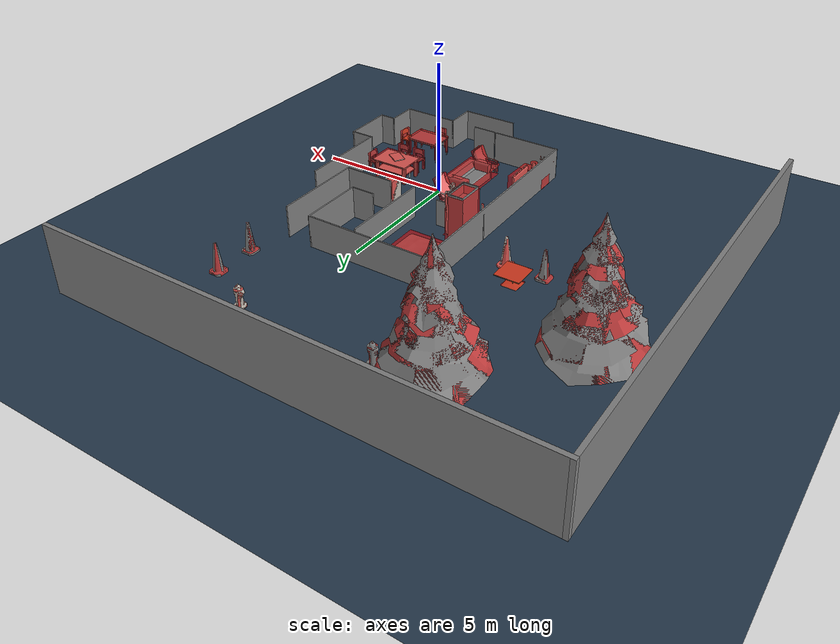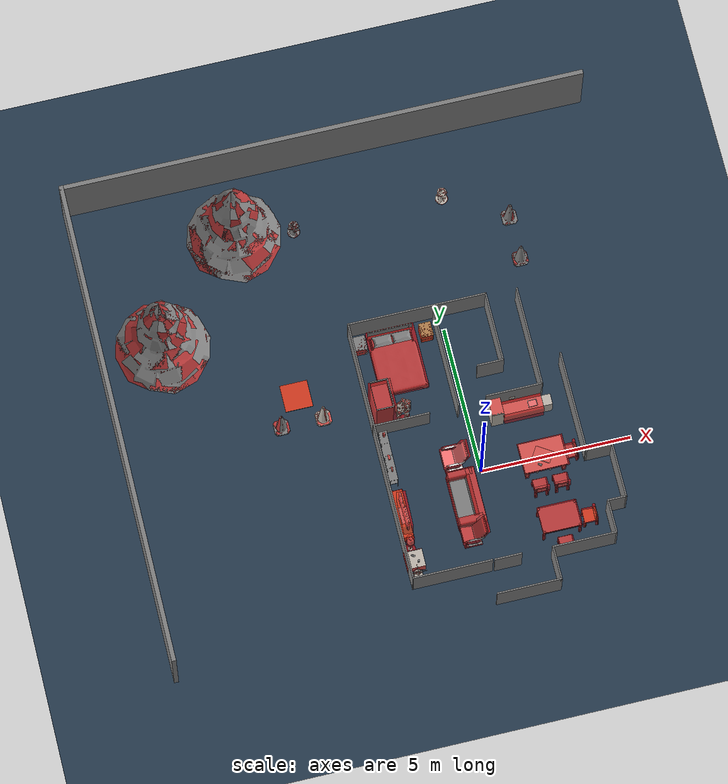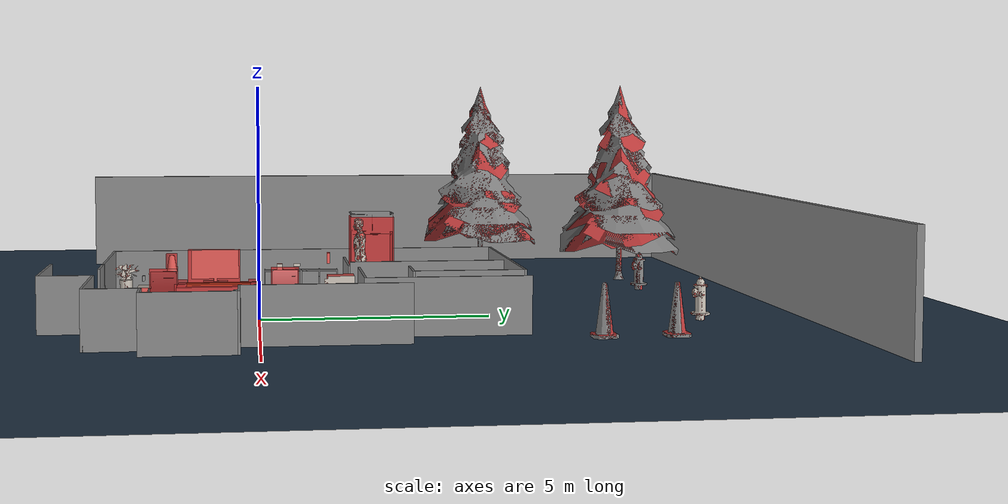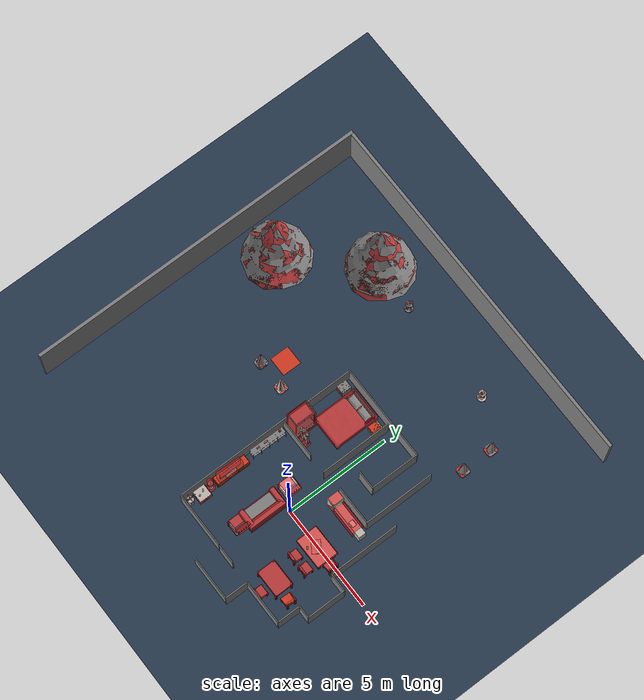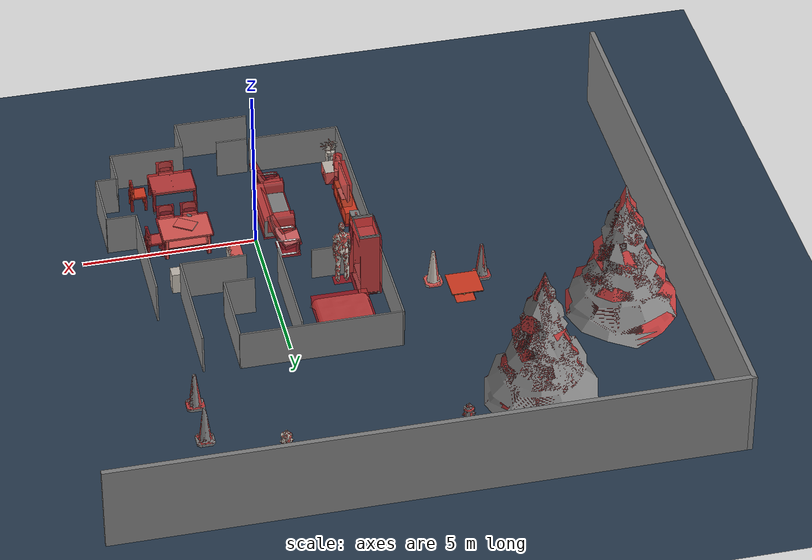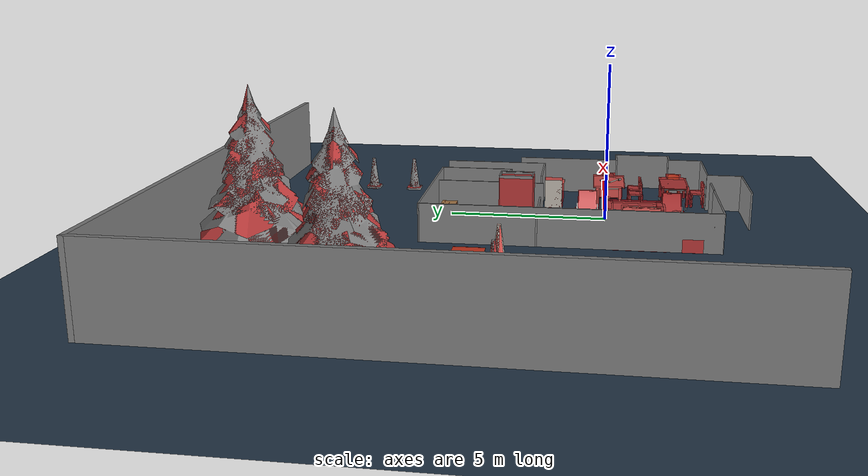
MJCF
<?xml version="1.0" ?>
<mujoco model="isr_testbed">
	<compiler meshdir="../../meshes/" texturedir="../../meshes/textures" angle="radian" autolimits="true" balanceinertia="true" boundmass="0.000001" boundinertia="0.000001"/>
	<default>
		<default class="visual">
			<geom contype="0" conaffinity="0"/>
		</default>
		<default class="collision">
			<geom rgba="1.0 0.0 0.0 0.5"/>
		</default>
	</default>
	<asset>
		<mesh name="construction_cone_collision10d010d010d0" file="stl/construction_cone10d010d010d0.stl"/>
		<texture name="construction_cone_visual10d010d010d0" type="2d" file="Construction_Cone_Diffuse.png"/>
		<material name="construction_cone_visual10d010d010d0" texture="construction_cone_visual10d010d010d0"/>
		<mesh name="construction_cone_visual10d010d010d0" file="obj/construction_cone10d010d010d0.obj"/>
		<mesh name="fire_hydrant_collision" file="stl/fire_hydrant.stl"/>
		<texture name="fire_hydrant_visual" type="2d" file="fire_hydrant_diffuse.png"/>
		<material name="fire_hydrant_visual" texture="fire_hydrant_visual"/>
		<mesh name="fire_hydrant_visual" file="obj/fire_hydrant.obj"/>
		<mesh name="pine_tree_visual" file="obj/pine_tree.obj"/>
		<mesh name="pine_tree_collision" file="stl/pine_tree.stl"/>
		<texture name="standing_visual" type="2d" file="eyebrow001.png"/>
		<material name="standing_visual" texture="standing_visual"/>
		<mesh name="standing_visual" file="obj/standing.obj"/>
		<mesh name="standing_collision" file="stl/standing.stl"/>
		<texture name="pizza_box_visual" type="2d" file="pizza_box_side.png"/>
		<material name="pizza_box_visual" texture="pizza_box_visual"/>
		<mesh name="pizza_box_visual" file="obj/pizza_box.obj"/>
		<texture name="tea_box_visual" type="2d" file="tea_box_back.png"/>
		<material name="tea_box_visual" texture="tea_box_visual"/>
		<mesh name="tea_box_visual" file="obj/tea_box.obj"/>
		<mesh name="plastic_cup_collision" file="stl/plastic_cup.stl"/>
		<mesh name="plastic_cup_visual" file="obj/plastic_cup.obj"/>
		<mesh name="shelf_visual0d150d20d2" file="stl/shelf0d150d20d2.stl"/>
		<mesh name="shelf_collision0d150d20d2" file="stl/shelf0d150d20d2.stl"/>
		<texture name="plant_floor_small_visual" type="2d" file="large_plant_small.png"/>
		<material name="plant_floor_small_visual" texture="plant_floor_small_visual"/>
		<mesh name="plant_floor_small_visual" file="obj/plant_floor_small.obj"/>
		<mesh name="plant_floor_small_collision" file="stl/plant_floor_small.stl"/>
		<texture name="table_bedside_visual1d71d70d9" type="2d" file="CIMG0283.png"/>
		<material name="table_bedside_visual1d71d70d9" texture="table_bedside_visual1d71d70d9"/>
		<mesh name="table_bedside_visual1d71d70d9" file="obj/table_bedside1d71d70d9.obj"/>
		<texture name="bedroom_nightstand_visual" type="2d" file="wood_cherry_texture.png"/>
		<material name="bedroom_nightstand_visual" texture="bedroom_nightstand_visual"/>
		<mesh name="bedroom_nightstand_visual" file="obj/bedroom_nightstand.obj"/>
		<mesh name="bedroom_nightstand_collision" file="stl/bedroom_nightstand.stl"/>
		<mesh name="dinning_room_table_visual" file="obj/dinning_room_table.obj"/>
		<mesh name="cabinet_diamondback_collision1d81d01d0" file="stl/cabinet_diamondback1d81d01d0.stl"/>
		<texture name="cabinet_diamondback_visual1d81d01d0" type="2d" file="cabinet_diamondback.png"/>
		<material name="cabinet_diamondback_visual1d81d01d0" texture="cabinet_diamondback_visual1d81d01d0"/>
		<mesh name="cabinet_diamondback_visual1d81d01d0" file="obj/cabinet_diamondback1d81d01d0.obj"/>
		<texture name="tray_blue_white_visual0d60d60d8" type="2d" file="blue_white_tray_top.png"/>
		<material name="tray_blue_white_visual0d60d60d8" texture="tray_blue_white_visual0d60d60d8"/>
		<mesh name="tray_blue_white_visual0d60d60d8" file="obj/tray_blue_white0d60d60d8.obj"/>
		<texture name="simple_chair_visual" type="2d" file="wood_bamboo_texture.png"/>
		<material name="simple_chair_visual" texture="simple_chair_visual"/>
		<mesh name="simple_chair_visual" file="obj/simple_chair.obj"/>
		<mesh name="sofa_visual" file="obj/sofa.obj"/>
		<texture name="tv_chair_visual" type="2d" file="white_cloth_texture.png"/>
		<material name="tv_chair_visual" texture="tv_chair_visual"/>
		<mesh name="tv_chair_visual" file="obj/tv_chair.obj"/>
		<texture name="tv_table_visual" type="2d" file="dark_wood_texture.png"/>
		<material name="tv_table_visual" texture="tv_table_visual"/>
		<mesh name="tv_table_visual" file="obj/tv_table.obj"/>
		<texture name="cafe_table_visual1d01d00d6" type="2d" file="Wood_Floor_Dark.png"/>
		<material name="cafe_table_visual1d01d00d6" texture="cafe_table_visual1d01d00d6"/>
		<mesh name="cafe_table_visual1d01d00d6" file="obj/cafe_table1d01d00d6.obj"/>
		<texture name="basmati_rice_visual1d51d01d0" type="2d" file="basmati_rice.png"/>
		<material name="basmati_rice_visual1d51d01d0" texture="basmati_rice_visual1d51d01d0"/>
		<mesh name="basmati_rice_visual1d51d01d0" file="obj/basmati_rice1d51d01d0.obj"/>
		<texture name="apple_juice_box_visual" type="2d" file="apple_juice_bottom.png"/>
		<material name="apple_juice_box_visual" texture="apple_juice_box_visual"/>
		<mesh name="apple_juice_box_visual" file="obj/apple_juice_box.obj"/>
		<texture name="cabinet_ikea_galant_visual1d20d80d8" type="2d" file="cabinet_ikea_galant.png"/>
		<material name="cabinet_ikea_galant_visual1d20d80d8" texture="cabinet_ikea_galant_visual1d20d80d8"/>
		<mesh name="cabinet_ikea_galant_visual1d20d80d8" file="obj/cabinet_ikea_galant1d20d80d8.obj"/>
		<texture name="aruco_marker_0_visual0d10d10d1" type="2d" file="aruco_mark_0.png"/>
		<material name="aruco_marker_0_visual0d10d10d1" texture="aruco_marker_0_visual0d10d10d1"/>
		<mesh name="aruco_marker_0_visual0d10d10d1" file="obj/aruco_marker_00d10d10d1.obj"/>
		<mesh name="aruco_marker_0_collision0d10d10d1" file="stl/aruco_marker_00d10d10d1.stl"/>
		<mesh name="SM_wardrobe__wardrobe__base_link_visual_0_visual" file="stl/SM_wardrobe__wardrobe__base_link_visual_0.stl"/>
		<texture name="lamp_ikea_arstid_visual1d01d02d0" type="2d" file="IMG_2634.png"/>
		<material name="lamp_ikea_arstid_visual1d01d02d0" texture="lamp_ikea_arstid_visual1d01d02d0"/>
		<mesh name="lamp_ikea_arstid_visual1d01d02d0" file="obj/lamp_ikea_arstid1d01d02d0.obj"/>
		<texture name="table_living_room_visual1d51d21d4" type="2d" file="table_living_room.png"/>
		<material name="table_living_room_visual1d51d21d4" texture="table_living_room_visual1d51d21d4"/>
		<mesh name="table_living_room_visual1d51d21d4" file="obj/table_living_room1d51d21d4.obj"/>
		<texture name="tv_visual" type="2d" file="tv_texture.png"/>
		<material name="tv_visual" texture="tv_visual"/>
		<mesh name="tv_visual" file="obj/tv.obj"/>
		<mesh name="bed_visual" file="stl/bed.stl"/>
	</asset>
	<asset>
		<texture type="2d" name="texplane" builtin="checker" mark="cross" rgb1="0.2 0.3 0.4" rgb2="0.1 0.15 0.2" markrgb="0.8 0.8 0.8" width="512" height="512"/>
		<material name="matplane" texture="texplane" texuniform="true" reflectance="0.3"/>
	</asset>
	<worldbody>
		<geom name="ground" size="0 0 1" type="plane" condim="1" material="matplane"/>
		<light pos="0 0 4" dir="0 0 -1" directional="true" diffuse="0.6 0.6 0.6" specular="0.2 0.2 0.2"/>
	</worldbody>
	<worldbody>
		<body name="isr_testbed" pos="0.0 0.0 0.0" quat="1.0 0.0 0.0 0.0">
			<body name="wall" pos="-1.19 1.86 0.0" quat="1.0 0.0 0.0 0.0">
				<body name="wall__wall__Wall_2" pos="0.0 0.0 0.0" quat="1.0 0.0 0.0 0.0">
					<geom name="wall__wall__Wall_2_collision_0" pos="-1.26581 9.97568 1.25" quat="0.9999999699875002 0.0 0.0 -0.00024499999754897916" class="collision" type="box" size="8.7892 0.07500000000000001 1.25"/>
					<geom name="wall__wall__Wall_2_visual_0" pos="-1.26581 9.97568 1.25" quat="0.9999999699875002 0.0 0.0 -0.00024499999754897916" class="visual" type="box" size="8.7892 0.07500000000000001 1.25"/>
				</body>
				<body name="wall__wall__Wall_0" pos="0.0 0.0 0.0" quat="1.0 0.0 0.0 0.0">
					<geom name="wall__wall__Wall_0_collision_0" pos="-9.98 1.805 1.25" quat="-0.7071054825112365 0.0 0.0 0.7071080798594735" class="collision" type="box" size="8.25 0.075 1.25"/>
					<geom name="wall__wall__Wall_0_visual_0" pos="-9.98 1.805 1.25" quat="-0.7071054825112365 0.0 0.0 0.7071080798594735" class="visual" type="box" size="8.25 0.075 1.25"/>
				</body>
			</body>
			<body name="cone2__ConstructionCone__link" pos="-4.54 2.97 0.0" quat="1.0 0.0 0.0 0.0">
				<geom name="cone2__ConstructionCone__link_collision_0" pos="0.0 0.0 0.0" quat="1.0 0.0 0.0 0.0" class="collision" type="mesh" mesh="construction_cone_collision10d010d010d0"/>
				<geom name="cone2__ConstructionCone__link_visual_0" pos="0.0 0.0 0.0" quat="1.0 0.0 0.0 0.0" class="visual" type="mesh" material="construction_cone_visual10d010d010d0" mesh="construction_cone_visual10d010d010d0"/>
			</body>
			<body name="cone4__ConstructionCone__link" pos="3.03 8.33 0.0" quat="1.0 0.0 0.0 0.0">
				<geom name="cone4__ConstructionCone__link_visual_0" pos="0.0 0.0 0.0" quat="1.0 0.0 0.0 0.0" class="visual" type="mesh" mesh="construction_cone_visual10d010d010d0"/>
				<geom name="cone4__ConstructionCone__link_collision_0" pos="0.0 0.0 0.0" quat="1.0 0.0 0.0 0.0" class="collision" type="mesh" mesh="construction_cone_collision10d010d010d0"/>
			</body>
			<body name="hydrant1__fire_hydrant__link" pos="1.01 9.45 0.0" quat="1.0 0.0 0.0 0.0">
				<geom name="hydrant1__fire_hydrant__link_collision_0" pos="0.0 0.0 0.0" quat="1.0 0.0 0.0 0.0" class="collision" type="mesh" mesh="fire_hydrant_collision"/>
				<geom name="hydrant1__fire_hydrant__link_visual_0" pos="0.0 0.0 0.0" quat="1.0 0.0 0.0 0.0" class="visual" type="mesh" material="fire_hydrant_visual" mesh="fire_hydrant_visual"/>
			</body>
			<body name="tree1__pine_tree__link" pos="-6.0 9.45 0.0" quat="1.0 0.0 0.0 0.0">
				<geom name="tree1__pine_tree__link_visual_1" pos="0.0 0.0 0.0" quat="1.0 0.0 0.0 0.0" class="visual" type="mesh" mesh="pine_tree_visual"/>
				<geom name="tree1__pine_tree__link_visual_0" pos="0.0 0.0 0.0" quat="1.0 0.0 0.0 0.0" class="visual" type="mesh" mesh="pine_tree_visual"/>
				<geom name="tree1__pine_tree__link_collision_0" pos="0.0 0.0 0.0" quat="1.0 0.0 0.0 0.0" class="collision" type="mesh" mesh="pine_tree_collision"/>
			</body>
			<body name="human__person_standing__link" pos="-2.04 2.41 0.0" quat="1.0 0.0 0.0 0.0">
				<geom name="human__person_standing__link_visual_0" pos="0.0 0.0 0.02" quat="0.9998000066665778 0.01999866669333308 0.0 0.0" class="visual" type="mesh" material="standing_visual" mesh="standing_visual"/>
				<geom name="human__person_standing__link_collision_1" pos="0.0 0.0 0.02" quat="0.9998000066665778 0.01999866669333308 0.0 0.0" class="collision" type="mesh" mesh="standing_collision"/>
				<geom name="human__person_standing__link_collision_0" pos="0.0 -0.1 0.01" quat="1.0 0.0 0.0 0.0" class="collision" type="box" size="0.25 0.175 0.01"/>
			</body>
			<body name="pizza_box__pizza_box__base_link" pos="2.0 -0.15 0.8" quat="0.8775825618903728 0.0 0.0 0.47942553860420295">
				<geom name="pizza_box__pizza_box__base_link_collision_0" pos="0.0 0.0 0.0175" quat="1.0 0.0 0.0 0.0" class="collision" type="box" size="0.205 0.3 0.0175"/>
				<geom name="pizza_box__pizza_box__base_link_visual_0" pos="0.0 0.0 0.0" quat="1.0 0.0 0.0 0.0" class="visual" type="mesh" material="pizza_box_visual" mesh="pizza_box_visual"/>
			</body>
			<body name="tea_box__tea_box__base_link" pos="-2.85 0.9 0.85" quat="1.0 0.0 0.0 0.0">
				<geom name="tea_box__tea_box__base_link_collision_0" pos="0.0 0.0 0.0" quat="1.0 0.0 0.0 0.0" class="collision" type="box" size="0.0315 0.079 0.0365"/>
				<geom name="tea_box__tea_box__base_link_visual_0" pos="0.0 0.0 0.0" quat="1.0 0.0 0.0 0.0" class="visual" type="mesh" material="tea_box_visual" mesh="tea_box_visual"/>
			</body>
			<body name="cup1__plastic_cup__link" pos="-2.85 -2.4 0.45" quat="0.8775825618903728 0.0 0.0 0.47942553860420295">
				<geom name="cup1__plastic_cup__link_collision_0" pos="0.0 0.0 0.065" quat="1.0 0.0 0.0 0.0" class="collision" type="mesh" mesh="plastic_cup_collision"/>
				<geom name="cup1__plastic_cup__link_visual_0" pos="0.0 0.0 0.065" quat="1.0 0.0 0.0 0.0" class="visual" type="mesh" mesh="plastic_cup_visual"/>
			</body>
			<body name="shelf__shelf__base_link" pos="-2.85 1.0 0.0" quat="0.7109135380122774 0.0 0.0 0.7032794192004103">
				<geom name="shelf__shelf__base_link_visual_0" pos="0.0 0.0 0.0" quat="1.0 0.0 0.0 0.0" class="visual" type="mesh" mesh="shelf_visual0d150d20d2"/>
				<geom name="shelf__shelf__base_link_collision_0" pos="0.0 0.0 0.0" quat="1.0 0.0 0.0 0.0" class="collision" type="mesh" mesh="shelf_collision0d150d20d2"/>
			</body>
			<body name="plant_floor_small__plant_floor_small__base_link" pos="-2.84 -3.05 0.0" quat="1.0 0.0 0.0 0.0">
				<geom name="plant_floor_small__plant_floor_small__base_link_visual_0" pos="0.0 0.0 0.0" quat="1.0 0.0 0.0 0.0" class="visual" type="mesh" material="plant_floor_small_visual" mesh="plant_floor_small_visual"/>
				<geom name="plant_floor_small__plant_floor_small__base_link_collision_0" pos="0.0 0.0 0.0" quat="1.0 0.0 0.0 0.0" class="collision" type="mesh" mesh="plant_floor_small_collision"/>
			</body>
			<body name="table_bedside__table_bedside__base_link" pos="-2.82 -2.48 0.0" quat="1.0 0.0 0.0 0.0">
				<geom name="table_bedside__table_bedside__base_link_visual_0" pos="0.0 0.0 0.0" quat="1.0 0.0 0.0 0.0" class="visual" type="mesh" material="table_bedside_visual1d71d70d9" mesh="table_bedside_visual1d71d70d9"/>
				<geom name="table_bedside__table_bedside__base_link_collision_0" pos="0.0 0.0 0.2" quat="1.0 0.0 0.0 0.0" class="collision" type="box" size="0.3 0.3 0.2"/>
			</body>
			<body name="nightstand1__bedroom_nightstand__link_0" pos="-0.69 5.0 0.0" quat="1.0 0.0 0.0 0.0">
				<geom name="nightstand1__bedroom_nightstand__link_0_visual_0" pos="0.0 0.0 0.0" quat="1.0 0.0 0.0 0.0" class="visual" type="mesh" material="bedroom_nightstand_visual" mesh="bedroom_nightstand_visual"/>
				<geom name="nightstand1__bedroom_nightstand__link_0_collision_0" pos="0.0 0.0 0.0" quat="1.0 0.0 0.0 0.0" class="collision" type="mesh" mesh="bedroom_nightstand_collision"/>
			</body>
			<body name="dinning_room_table__dinning_room_table__base_link" pos="2.05802 -2.30976 0.0" quat="1.0 0.0 0.0 0.0">
				<geom name="dinning_room_table__dinning_room_table__base_link_collision_2" pos="0.55 -0.4 0.45" quat="1.0 0.0 0.0 0.0" class="collision" type="cylinder" size="0.05 0.35"/>
				<geom name="dinning_room_table__dinning_room_table__base_link_collision_1" pos="-0.65 -0.4 0.45" quat="1.0 0.0 0.0 0.0" class="collision" type="cylinder" size="0.05 0.35"/>
				<geom name="dinning_room_table__dinning_room_table__base_link_visual_0" pos="-4.8 -1.2 0.0" quat="1.0 0.0 0.0 0.0" class="visual" type="mesh" mesh="dinning_room_table_visual"/>
				<geom name="dinning_room_table__dinning_room_table__base_link_collision_3" pos="0.55 0.4 0.45" quat="1.0 0.0 0.0 0.0" class="collision" type="cylinder" size="0.05 0.35"/>
				<geom name="dinning_room_table__dinning_room_table__base_link_collision_0" pos="-0.04 0.015 0.75" quat="1.0 0.0 0.0 0.0" class="collision" type="box" size="0.65 0.45 0.05"/>
				<geom name="dinning_room_table__dinning_room_table__base_link_collision_4" pos="-0.65 0.4 0.45" quat="1.0 0.0 0.0 0.0" class="collision" type="cylinder" size="0.05 0.35"/>
			</body>
			<body name="cabinet_diamondback__cabinet_diamondback__base_link" pos="0.91 1.69 0.0" quat="0.7086488244966773 0.0 0.0 -0.7055613676637047">
				<geom name="cabinet_diamondback__cabinet_diamondback__base_link_collision_0" pos="0.0 0.0 0.0" quat="1.0 0.0 0.0 0.0" class="collision" type="mesh" mesh="cabinet_diamondback_collision1d81d01d0"/>
				<geom name="cabinet_diamondback__cabinet_diamondback__base_link_visual_0" pos="0.0 0.0 0.0" quat="1.0 0.0 0.0 0.0" class="visual" type="mesh" material="cabinet_diamondback_visual1d81d01d0" mesh="cabinet_diamondback_visual1d81d01d0"/>
			</body>
			<body name="tray_blue_white__tray_blue_white__base_link" pos="2.12 1.67 0.68" quat="0.7179106696109434 0.0 0.0 -0.6961352386273568">
				<geom name="tray_blue_white__tray_blue_white__base_link_visual_0" pos="0.0 0.0 0.0" quat="1.0 0.0 0.0 0.0" class="visual" type="mesh" material="tray_blue_white_visual0d60d60d8" mesh="tray_blue_white_visual0d60d60d8"/>
				<geom name="tray_blue_white__tray_blue_white__base_link_collision_0" pos="0.0 0.0 0.0" quat="1.0 0.0 0.0 0.0" class="collision" type="box" size="0.115 0.15 0.008"/>
			</body>
			<body name="chair_dinning_room_2__simple_chair__link_0" pos="2.96 -2.52 0.0" quat="0.7151343726872378 0.0 0.0 0.6989870020259539">
				<geom name="chair_dinning_room_2__simple_chair__link_0_collision_2" pos="0.33 -0.25 0.2" quat="1.0 0.0 0.0 0.0" class="collision" type="box" size="0.04 0.04 0.25"/>
				<geom name="chair_dinning_room_2__simple_chair__link_0_collision_4" pos="-0.05 -0.25 0.2" quat="1.0 0.0 0.0 0.0" class="collision" type="box" size="0.04 0.04 0.25"/>
				<geom name="chair_dinning_room_2__simple_chair__link_0_collision_5" pos="-0.05 0.15 0.2" quat="1.0 0.0 0.0 0.0" class="collision" type="box" size="0.04 0.04 0.25"/>
				<geom name="chair_dinning_room_2__simple_chair__link_0_collision_1" pos="0.15 -0.22 0.6" quat="1.0 0.0 0.0 0.0" class="collision" type="box" size="0.25 0.0375 0.19"/>
				<geom name="chair_dinning_room_2__simple_chair__link_0_collision_3" pos="0.33 0.15 0.2" quat="1.0 0.0 0.0 0.0" class="collision" type="box" size="0.04 0.04 0.25"/>
				<geom name="chair_dinning_room_2__simple_chair__link_0_collision_0" pos="0.15 -0.05 0.45" quat="1.0 0.0 0.0 0.0" class="collision" type="box" size="0.25 0.225 0.025"/>
				<geom name="chair_dinning_room_2__simple_chair__link_0_visual_0" pos="0.0 0.0 0.0" quat="1.0 0.0 0.0 0.0" class="visual" type="mesh" material="simple_chair_visual" mesh="simple_chair_visual"/>
			</body>
			<body name="chair_kitchen_2__simple_chair__link_0" pos="2.26 -0.97 0.0" quat="1.0 0.0 0.0 0.0">
				<geom name="chair_kitchen_2__simple_chair__link_0_visual_0" pos="0.0 0.0 0.0" quat="1.0 0.0 0.0 0.0" class="visual" type="mesh" mesh="simple_chair_visual"/>
				<geom name="chair_kitchen_2__simple_chair__link_0_collision_0" pos="0.15 -0.05 0.45" quat="1.0 0.0 0.0 0.0" class="collision" type="box" size="0.25 0.225 0.025"/>
				<geom name="chair_kitchen_2__simple_chair__link_0_collision_2" pos="0.33 -0.25 0.2" quat="1.0 0.0 0.0 0.0" class="collision" type="box" size="0.04 0.04 0.25"/>
				<geom name="chair_kitchen_2__simple_chair__link_0_collision_5" pos="-0.05 0.15 0.2" quat="1.0 0.0 0.0 0.0" class="collision" type="box" size="0.04 0.04 0.25"/>
				<geom name="chair_kitchen_2__simple_chair__link_0_collision_1" pos="0.15 -0.22 0.6" quat="1.0 0.0 0.0 0.0" class="collision" type="box" size="0.25 0.0375 0.19"/>
				<geom name="chair_kitchen_2__simple_chair__link_0_collision_3" pos="0.33 0.15 0.2" quat="1.0 0.0 0.0 0.0" class="collision" type="box" size="0.04 0.04 0.25"/>
				<geom name="chair_kitchen_2__simple_chair__link_0_collision_4" pos="-0.05 -0.25 0.2" quat="1.0 0.0 0.0 0.0" class="collision" type="box" size="0.04 0.04 0.25"/>
			</body>
			<body name="sofa__sofa__link_0" pos="-0.76 -0.9 0.0" quat="1.0 0.0 0.0 0.0">
				<geom name="sofa__sofa__link_0_collision_0" pos="0.05 0.0 0.2" quat="1.0 0.0 0.0 0.0" class="collision" type="box" size="0.465 0.915 0.185"/>
				<geom name="sofa__sofa__link_0_collision_2" pos="0.0 -0.8 0.5" quat="1.0 0.0 0.0 0.0" class="collision" type="box" size="0.4 0.125 0.25"/>
				<geom name="sofa__sofa__link_0_collision_1" pos="0.35 0.0 0.5" quat="1.0 0.0 0.0 0.0" class="collision" type="box" size="0.15 0.915 0.25"/>
				<geom name="sofa__sofa__link_0_collision_3" pos="0.0 0.8 0.5" quat="1.0 0.0 0.0 0.0" class="collision" type="box" size="0.4 0.125 0.25"/>
				<geom name="sofa__sofa__link_0_visual_0" pos="0.0 0.0 0.0" quat="1.0 0.0 0.0 0.0" class="visual" type="mesh" mesh="sofa_visual"/>
			</body>
			<body name="chair2__tv_chair__link_0" pos="-0.73 0.57 0.0" quat="0.7073882691671998 0.0 0.0 -0.706825181105366">
				<geom name="chair2__tv_chair__link_0_visual_0" pos="0.0 0.0 0.0" quat="1.0 0.0 0.0 0.0" class="visual" type="mesh" material="tv_chair_visual" mesh="tv_chair_visual"/>
				<geom name="chair2__tv_chair__link_0_collision_1" pos="0.0 -0.1 0.0" quat="1.0 0.0 0.0 0.0" class="collision" type="box" size="0.35 0.3 0.025"/>
				<geom name="chair2__tv_chair__link_0_collision_0" pos="0.0 -0.2 0.35" quat="0.9902159962126371 -0.1395431146442365 0.0 0.0" class="collision" type="box" size="0.35 0.24999999999999997 0.05"/>
				<geom name="chair2__tv_chair__link_0_collision_3" pos="0.33 -0.33 0.3" quat="1.0 0.0 0.0 0.0" class="collision" type="box" size="0.05 0.05 0.225"/>
				<geom name="chair2__tv_chair__link_0_collision_2" pos="0.0 0.18 0.65" quat="0.9800665778412416 -0.19866933079506122 0.0 0.0" class="collision" type="box" size="0.3 0.10000000000000002 0.425"/>
				<geom name="chair2__tv_chair__link_0_collision_4" pos="-0.33 -0.33 0.3" quat="1.0 0.0 0.0 0.0" class="collision" type="box" size="0.05 0.05 0.225"/>
				<geom name="chair2__tv_chair__link_0_collision_6" pos="0.33 -0.1 0.5" quat="1.0 0.0 0.0 0.0" class="collision" type="box" size="0.05 0.225 0.05"/>
				<geom name="chair2__tv_chair__link_0_collision_5" pos="-0.33 -0.1 0.5" quat="1.0 0.0 0.0 0.0" class="collision" type="box" size="0.05 0.225 0.05"/>
			</body>
			<body name="tv_table__tv_table__link_0" pos="-2.81 -0.98 0.0" quat="1.0 0.0 0.0 0.0">
				<geom name="tv_table__tv_table__link_0_visual_0" pos="0.0 0.0 0.0" quat="1.0 0.0 0.0 0.0" class="visual" type="mesh" material="tv_table_visual" mesh="tv_table_visual"/>
				<geom name="tv_table__tv_table__link_0_collision_0" pos="-0.05 0.05 0.2" quat="1.0 0.0 0.0 0.0" class="collision" type="box" size="0.2 0.825 0.25"/>
			</body>
			<body name="walls" pos="0.49183 0.433522 0.0" quat="1.0 0.0 0.0 0.0">
				<body name="walls__walls__Wall_19" pos="0.0 0.0 0.0" quat="1.0 0.0 0.0 0.0">
					<geom name="walls__walls__Wall_19_visual_0" pos="-2.66199 1.59399 0.5" quat="1.0 0.0 0.0 0.0" class="visual" type="box" size="0.95 0.025 0.5"/>
					<geom name="walls__walls__Wall_19_collision_0" pos="-2.66199 1.59399 0.5" quat="1.0 0.0 0.0 0.0" class="collision" type="box" size="0.95 0.025 0.5"/>
				</body>
				<body name="walls__walls__Wall_22" pos="0.0 0.0 0.0" quat="1.0 0.0 0.0 0.0">
					<geom name="walls__walls__Wall_22_visual_0" pos="1.028 -4.332 0.6" quat="0.7071054825112364 0.0 0.0 0.7071080798594735" class="visual" type="box" size="0.575 0.025 0.6"/>
					<geom name="walls__walls__Wall_22_collision_0" pos="1.028 -4.332 0.6" quat="0.7071054825112364 0.0 0.0 0.7071080798594735" class="collision" type="box" size="0.575 0.025 0.6"/>
				</body>
				<body name="walls__walls__Wall_24" pos="0.0 0.0 0.0" quat="1.0 0.0 0.0 0.0">
					<geom name="walls__walls__Wall_24_visual_0" pos="3.128 -3.232 0.6" quat="0.7071054825112364 0.0 0.0 0.7071080798594735" class="visual" type="box" size="0.575 0.025 0.6"/>
					<geom name="walls__walls__Wall_24_collision_0" pos="3.128 -3.232 0.6" quat="0.7071054825112364 0.0 0.0 0.7071080798594735" class="collision" type="box" size="0.575 0.025 0.6"/>
				</body>
				<body name="walls__walls__Wall_26" pos="0.0 0.0 0.0" quat="1.0 0.0 0.0 0.0">
					<geom name="walls__walls__Wall_26_collision_0" pos="3.728 -1.757 0.6" quat="0.7071054825112364 0.0 0.0 0.7071080798594735" class="collision" type="box" size="0.9499999999999998 0.025 0.6"/>
					<geom name="walls__walls__Wall_26_visual_0" pos="3.728 -1.757 0.6" quat="0.7071054825112364 0.0 0.0 0.7071080798594735" class="visual" type="box" size="0.9499999999999998 0.025 0.6"/>
				</body>
				<body name="walls__walls__Wall_36" pos="0.0 0.0 0.0" quat="1.0 0.0 0.0 0.0">
					<geom name="walls__walls__Wall_36_collision_0" pos="1.117 1.66399 0.6" quat="1.0 0.0 0.0 0.0" class="collision" type="box" size="0.95 0.025 0.6"/>
					<geom name="walls__walls__Wall_36_visual_0" pos="1.117 1.66399 0.6" quat="1.0 0.0 0.0 0.0" class="visual" type="box" size="0.95 0.025 0.6"/>
				</body>
				<body name="walls__walls__Wall_49" pos="0.0 0.0 0.0" quat="1.0 0.0 0.0 0.0">
					<geom name="walls__walls__Wall_49_collision_0" pos="-1.28699 5.09399 0.6" quat="1.0 0.0 0.0 0.0" class="collision" type="box" size="2.325 0.025 0.6"/>
					<geom name="walls__walls__Wall_49_visual_0" pos="-1.28699 5.09399 0.6" quat="1.0 0.0 0.0 0.0" class="visual" type="box" size="2.325 0.025 0.6"/>
				</body>
				<body name="walls__walls__Wall_51" pos="0.0 0.0 0.0" quat="1.0 0.0 0.0 0.0">
					<geom name="walls__walls__Wall_51_collision_0" pos="0.588 2.74399 0.6" quat="1.3267948966775328e-06 0.0 0.0 0.9999999999991198" class="collision" type="box" size="0.45 0.025 0.6"/>
					<geom name="walls__walls__Wall_51_visual_0" pos="0.588 2.74399 0.6" quat="1.3267948966775328e-06 0.0 0.0 0.9999999999991198" class="visual" type="box" size="0.45 0.025 0.6"/>
				</body>
				<body name="walls__walls__Wall_58" pos="0.0 0.0 0.0" quat="1.0 0.0 0.0 0.0">
					<geom name="walls__walls__Wall_58_visual_0" pos="2.042 3.33899 0.6" quat="0.7071054825112364 0.0 0.0 0.7071080798594735" class="visual" type="box" size="1.7 0.025 0.6"/>
					<geom name="walls__walls__Wall_58_collision_0" pos="2.042 3.33899 0.6" quat="0.7071054825112364 0.0 0.0 0.7071080798594735" class="collision" type="box" size="1.7 0.025 0.6"/>
				</body>
				<body name="walls__walls__Wall_63" pos="0.0 0.0 0.0" quat="1.0 0.0 0.0 0.0">
					<geom name="walls__walls__Wall_63_collision_0" pos="2.878 0.843 0.6" quat="0.7071054825112364 0.0 0.0 0.7071080798594735" class="collision" type="box" size="1.7 0.025 0.6"/>
					<geom name="walls__walls__Wall_63_visual_0" pos="2.878 0.843 0.6" quat="0.7071054825112364 0.0 0.0 0.7071080798594735" class="visual" type="box" size="1.7 0.025 0.6"/>
				</body>
				<body name="walls__walls__Door_4" pos="0.0 0.0 0.0" quat="1.0 0.0 0.0 0.0">
					<geom name="walls__walls__Door_4_collision_0" pos="-0.44425 -3.76409 0.6" quat="0.9999998848000022 0.0 0.0 -0.00047999998156800027" class="collision" type="box" size="0.453 0.025 0.6"/>
					<geom name="walls__walls__Door_4_visual_0" pos="-0.44425 -3.76409 0.6" quat="0.9999998848000022 0.0 0.0 -0.00047999998156800027" class="visual" type="box" size="0.453 0.025 0.6"/>
				</body>
				<body name="walls__walls__Wall_23" pos="0.0 0.0 0.0" quat="1.0 0.0 0.0 0.0">
					<geom name="walls__walls__Wall_23_collision_0" pos="2.078 -3.782 0.6" quat="1.0 0.0 0.0 0.0" class="collision" type="box" size="1.075 0.025 0.6"/>
					<geom name="walls__walls__Wall_23_visual_0" pos="2.078 -3.782 0.6" quat="1.0 0.0 0.0 0.0" class="visual" type="box" size="1.075 0.025 0.6"/>
				</body>
				<body name="walls__walls__Wall_27" pos="0.0 0.0 0.0" quat="1.0 0.0 0.0 0.0">
					<geom name="walls__walls__Wall_27_collision_0" pos="3.303 -0.832 0.6" quat="1.3267948966775328e-06 0.0 0.0 0.9999999999991198" class="collision" type="box" size="0.45 0.025 0.6"/>
					<geom name="walls__walls__Wall_27_visual_0" pos="3.303 -0.832 0.6" quat="1.3267948966775328e-06 0.0 0.0 0.9999999999991198" class="visual" type="box" size="0.45 0.025 0.6"/>
				</body>
				<body name="walls__walls__Wall_50" pos="0.0 0.0 0.0" quat="1.0 0.0 0.0 0.0">
					<geom name="walls__walls__Wall_50_visual_0" pos="1.01299 3.91899 0.6" quat="-0.7071054825112364 0.0 0.0 0.7071080798594735" class="visual" type="box" size="1.2 0.025 0.6"/>
					<geom name="walls__walls__Wall_50_collision_0" pos="1.01299 3.91899 0.6" quat="-0.7071054825112364 0.0 0.0 0.7071080798594735" class="collision" type="box" size="1.2 0.025 0.6"/>
				</body>
				<body name="walls__walls__Wall_61" pos="0.0 0.0 0.0" quat="1.0 0.0 0.0 0.0">
					<geom name="walls__walls__Wall_61_collision_0" pos="-2.27499 -3.756 0.6" quat="1.0 0.0 0.0 0.0" class="collision" type="box" size="1.325 0.025 0.6"/>
					<geom name="walls__walls__Wall_61_visual_0" pos="-2.27499 -3.756 0.6" quat="1.0 0.0 0.0 0.0" class="visual" type="box" size="1.325 0.025 0.6"/>
				</body>
				<body name="walls__walls__Wall_21" pos="0.0 0.0 0.0" quat="1.0 0.0 0.0 0.0">
					<geom name="walls__walls__Wall_21_visual_0" pos="-0.022 -4.882 0.6" quat="1.0 0.0 0.0 0.0" class="visual" type="box" size="1.075 0.025 0.6"/>
					<geom name="walls__walls__Wall_21_collision_0" pos="-0.022 -4.882 0.6" quat="1.0 0.0 0.0 0.0" class="collision" type="box" size="1.075 0.025 0.6"/>
				</body>
				<body name="walls__walls__Wall_48" pos="0.0 0.0 0.0" quat="1.0 0.0 0.0 0.0">
					<geom name="walls__walls__Wall_48_visual_0" pos="-3.58099 0.669 0.6" quat="0.7066280235061143 0.0 0.0 0.7075852149358707" class="visual" type="box" size="4.450005 0.025000000000000005 0.6"/>
					<geom name="walls__walls__Wall_48_collision_0" pos="-3.58099 0.669 0.6" quat="0.7066280235061143 0.0 0.0 0.7075852149358707" class="collision" type="box" size="4.450005 0.025000000000000005 0.6"/>
				</body>
				<body name="walls__walls__Wall_25" pos="0.0 0.0 0.0" quat="1.0 0.0 0.0 0.0">
					<geom name="walls__walls__Wall_25_visual_0" pos="3.428 -2.682 0.6" quat="1.0 0.0 0.0 0.0" class="visual" type="box" size="0.325 0.025 0.6"/>
					<geom name="walls__walls__Wall_25_collision_0" pos="3.428 -2.682 0.6" quat="1.0 0.0 0.0 0.0" class="collision" type="box" size="0.325 0.025 0.6"/>
				</body>
				<body name="walls__walls__Wall_53" pos="0.0 0.0 0.0" quat="1.0 0.0 0.0 0.0">
					<geom name="walls__walls__Wall_53_collision_0" pos="-0.765 3.24799 0.6" quat="0.7071054825112364 0.0 0.0 0.7071080798594735" class="collision" type="box" size="1.7 0.025 0.6"/>
					<geom name="walls__walls__Wall_53_visual_0" pos="-0.765 3.24799 0.6" quat="0.7071054825112364 0.0 0.0 0.7071080798594735" class="visual" type="box" size="1.7 0.025 0.6"/>
				</body>
			</body>
			<body name="cone1__ConstructionCone__link" pos="-5.94 2.97 0.0" quat="1.0 0.0 0.0 0.0">
				<geom name="cone1__ConstructionCone__link_visual_0" pos="0.0 0.0 0.0" quat="1.0 0.0 0.0 0.0" class="visual" type="mesh" mesh="construction_cone_visual10d010d010d0"/>
				<geom name="cone1__ConstructionCone__link_collision_0" pos="0.0 0.0 0.0" quat="1.0 0.0 0.0 0.0" class="collision" type="mesh" mesh="construction_cone_collision10d010d010d0"/>
			</body>
			<body name="table_outside__cafe_table__link" pos="-5.25 3.77 0.0" quat="1.0 0.0 0.0 0.0">
				<geom name="table_outside__cafe_table__link_collision_0" pos="0.0 0.0 0.45" quat="1.0 0.0 0.0 0.0" class="collision" type="box" size="0.4565 0.4565 0.0175"/>
				<geom name="table_outside__cafe_table__link_collision_2" pos="0.0 0.0 0.02" quat="1.0 0.0 0.0 0.0" class="collision" type="box" size="0.28 0.28 0.02"/>
				<geom name="table_outside__cafe_table__link_visual_0" pos="0.0 0.0 0.0" quat="1.0 0.0 0.0 0.0" class="visual" type="mesh" material="cafe_table_visual1d01d00d6" mesh="cafe_table_visual1d01d00d6"/>
				<geom name="table_outside__cafe_table__link_collision_1" pos="0.0 0.0 0.37" quat="1.0 0.0 0.0 0.0" class="collision" type="box" size="0.021 0.021 0.075"/>
			</body>
			<body name="tree2__pine_tree__link" pos="-9.11 6.25 0.0" quat="1.0 0.0 0.0 0.0">
				<geom name="tree2__pine_tree__link_collision_0" pos="0.0 0.0 0.0" quat="1.0 0.0 0.0 0.0" class="collision" type="mesh" mesh="pine_tree_collision"/>
				<geom name="tree2__pine_tree__link_visual_1" pos="0.0 0.0 0.0" quat="1.0 0.0 0.0 0.0" class="visual" type="mesh" mesh="pine_tree_visual"/>
				<geom name="tree2__pine_tree__link_visual_0" pos="0.0 0.0 0.0" quat="1.0 0.0 0.0 0.0" class="visual" type="mesh" mesh="pine_tree_visual"/>
			</body>
			<body name="basmati_rice__basmati_rice__base_link" pos="-2.85 0.5 0.8" quat="1.0 0.0 0.0 0.0">
				<geom name="basmati_rice__basmati_rice__base_link_visual_0" pos="0.0 0.0 0.0" quat="1.0 0.0 0.0 0.0" class="visual" type="mesh" material="basmati_rice_visual1d51d01d0" mesh="basmati_rice_visual1d51d01d0"/>
				<geom name="basmati_rice__basmati_rice__base_link_collision_0" pos="0.0 0.0 0.0" quat="1.0 0.0 0.0 0.0" class="collision" type="box" size="0.0205 0.061 0.085"/>
			</body>
			<body name="cup2__plastic_cup__link" pos="1.83 -0.48 0.8" quat="0.8775825618903728 0.0 0.0 0.47942553860420295">
				<geom name="cup2__plastic_cup__link_collision_0" pos="0.0 0.0 0.065" quat="1.0 0.0 0.0 0.0" class="collision" type="mesh" mesh="plastic_cup_collision"/>
				<geom name="cup2__plastic_cup__link_visual_0" pos="0.0 0.0 0.065" quat="1.0 0.0 0.0 0.0" class="visual" type="mesh" mesh="plastic_cup_visual"/>
			</body>
			<body name="apple_juice_box__apple_juice__base_link" pos="-2.84 1.64 1.0" quat="1.0 0.0 0.0 0.0">
				<geom name="apple_juice_box__apple_juice__base_link_collision_0" pos="0.0 0.0 0.0055" quat="1.0 0.0 0.0 0.0" class="collision" type="box" size="0.0345 0.0345 0.1295"/>
				<geom name="apple_juice_box__apple_juice__base_link_visual_0" pos="0.0 0.0 0.0" quat="1.0 0.0 0.0 0.0" class="visual" type="mesh" material="apple_juice_box_visual" mesh="apple_juice_box_visual"/>
			</body>
			<body name="nightstand2__bedroom_nightstand__link_0" pos="-2.89 5.03713 0.0" quat="1.0 0.0 0.0 0.0">
				<geom name="nightstand2__bedroom_nightstand__link_0_visual_0" pos="0.0 0.0 0.0" quat="1.0 0.0 0.0 0.0" class="visual" type="mesh" mesh="bedroom_nightstand_visual"/>
				<geom name="nightstand2__bedroom_nightstand__link_0_collision_0" pos="0.0 0.0 0.0" quat="1.0 0.0 0.0 0.0" class="collision" type="mesh" mesh="bedroom_nightstand_collision"/>
			</body>
			<body name="cabinet_ikea_galant__cabinet_ikea_galant__base_link" pos="1.8 1.68 0.0" quat="1.0 0.0 0.0 0.0">
				<geom name="cabinet_ikea_galant__cabinet_ikea_galant__base_link_collision_0" pos="0.0 0.0 0.33" quat="1.0 0.0 0.0 0.0" class="collision" type="box" size="0.65 0.27 0.33"/>
				<geom name="cabinet_ikea_galant__cabinet_ikea_galant__base_link_visual_0" pos="0.0 0.0 0.0" quat="-0.7071054825112364 0.0 0.0 0.7071080798594735" class="visual" type="mesh" material="cabinet_ikea_galant_visual1d20d80d8" mesh="cabinet_ikea_galant_visual1d20d80d8"/>
			</body>
			<body name="chair_kitchen_1__simple_chair__link_0" pos="1.57 -0.98 0.0" quat="1.0 0.0 0.0 0.0">
				<geom name="chair_kitchen_1__simple_chair__link_0_collision_2" pos="0.33 -0.25 0.2" quat="1.0 0.0 0.0 0.0" class="collision" type="box" size="0.04 0.04 0.25"/>
				<geom name="chair_kitchen_1__simple_chair__link_0_collision_1" pos="0.15 -0.22 0.6" quat="1.0 0.0 0.0 0.0" class="collision" type="box" size="0.25 0.0375 0.19"/>
				<geom name="chair_kitchen_1__simple_chair__link_0_visual_0" pos="0.0 0.0 0.0" quat="1.0 0.0 0.0 0.0" class="visual" type="mesh" mesh="simple_chair_visual"/>
				<geom name="chair_kitchen_1__simple_chair__link_0_collision_3" pos="0.33 0.15 0.2" quat="1.0 0.0 0.0 0.0" class="collision" type="box" size="0.04 0.04 0.25"/>
				<geom name="chair_kitchen_1__simple_chair__link_0_collision_4" pos="-0.05 -0.25 0.2" quat="1.0 0.0 0.0 0.0" class="collision" type="box" size="0.04 0.04 0.25"/>
				<geom name="chair_kitchen_1__simple_chair__link_0_collision_0" pos="0.15 -0.05 0.45" quat="1.0 0.0 0.0 0.0" class="collision" type="box" size="0.25 0.225 0.025"/>
				<geom name="chair_kitchen_1__simple_chair__link_0_collision_5" pos="-0.05 0.15 0.2" quat="1.0 0.0 0.0 0.0" class="collision" type="box" size="0.04 0.04 0.25"/>
			</body>
			<body name="chair1__tv_chair__link_0" pos="-0.73 -2.05 0.0" quat="0.7073882691671998 0.0 0.0 -0.706825181105366">
				<geom name="chair1__tv_chair__link_0_collision_3" pos="0.33 -0.33 0.3" quat="1.0 0.0 0.0 0.0" class="collision" type="box" size="0.05 0.05 0.225"/>
				<geom name="chair1__tv_chair__link_0_collision_2" pos="0.0 0.18 0.65" quat="0.9800665778412416 -0.19866933079506122 0.0 0.0" class="collision" type="box" size="0.3 0.10000000000000002 0.425"/>
				<geom name="chair1__tv_chair__link_0_visual_0" pos="0.0 0.0 0.0" quat="1.0 0.0 0.0 0.0" class="visual" type="mesh" mesh="tv_chair_visual"/>
				<geom name="chair1__tv_chair__link_0_collision_1" pos="0.0 -0.1 0.0" quat="1.0 0.0 0.0 0.0" class="collision" type="box" size="0.35 0.3 0.025"/>
				<geom name="chair1__tv_chair__link_0_collision_6" pos="0.33 -0.1 0.5" quat="1.0 0.0 0.0 0.0" class="collision" type="box" size="0.05 0.225 0.05"/>
				<geom name="chair1__tv_chair__link_0_collision_5" pos="-0.33 -0.1 0.5" quat="1.0 0.0 0.0 0.0" class="collision" type="box" size="0.05 0.225 0.05"/>
				<geom name="chair1__tv_chair__link_0_collision_4" pos="-0.33 -0.33 0.3" quat="1.0 0.0 0.0 0.0" class="collision" type="box" size="0.05 0.05 0.225"/>
				<geom name="chair1__tv_chair__link_0_collision_0" pos="0.0 -0.2 0.35" quat="0.9902159962126371 -0.1395431146442365 0.0 0.0" class="collision" type="box" size="0.35 0.24999999999999997 0.05"/>
			</body>
			<body name="aruco_marker_0__aruco_marker_0__link_0" pos="1.5 1.96 0.8" quat="0.7071067811865476 0.0 0.0 -0.7071067811865475">
				<geom name="aruco_marker_0__aruco_marker_0__link_0_visual_0" pos="0.0 0.0 0.0" quat="1.0 0.0 0.0 0.0" class="visual" type="mesh" material="aruco_marker_0_visual0d10d10d1" mesh="aruco_marker_0_visual0d10d10d1"/>
				<geom name="aruco_marker_0__aruco_marker_0__link_0_collision_0" pos="0.0 0.0 0.0" quat="1.0 0.0 0.0 0.0" class="collision" type="mesh" mesh="aruco_marker_0_collision0d10d10d1"/>
			</body>
			<body name="cone3__ConstructionCone__link" pos="3.03 6.84 0.0" quat="1.0 0.0 0.0 0.0">
				<geom name="cone3__ConstructionCone__link_collision_0" pos="0.0 0.0 0.0" quat="1.0 0.0 0.0 0.0" class="collision" type="mesh" mesh="construction_cone_collision10d010d010d0"/>
				<geom name="cone3__ConstructionCone__link_visual_0" pos="0.0 0.0 0.0" quat="1.0 0.0 0.0 0.0" class="visual" type="mesh" mesh="construction_cone_visual10d010d010d0"/>
			</body>
			<body name="wardrobe__wardrobe__base_link" pos="-2.65 2.44 0.0" quat="1.0 0.0 0.0 0.0">
				<geom name="wardrobe__wardrobe__base_link_collision_0" pos="0.0 0.2 1.0" quat="0.7073882691671998 0.0 0.0 0.706825181105366" class="collision" type="box" size="0.5 0.36000000000000004 1.0"/>
				<geom name="wardrobe__wardrobe__base_link_visual_0" pos="0.0 0.2 0.0" quat="0.7073882691671998 0.0 0.0 0.706825181105366" class="visual" type="mesh" mesh="SM_wardrobe__wardrobe__base_link_visual_0_visual"/>
			</body>
			<body name="lamp_ikea_arstid__lamp_ikea_arstid__base_link" pos="-2.85 -2.0 0.0" quat="0.7109135380122774 0.0 0.0 0.7032794192004103">
				<geom name="lamp_ikea_arstid__lamp_ikea_arstid__base_link_collision_2" pos="0.0 0.0 0.9" quat="1.0 0.0 0.0 0.0" class="collision" type="cylinder" size="0.13 0.25"/>
				<geom name="lamp_ikea_arstid__lamp_ikea_arstid__base_link_visual_0" pos="0.0 0.0 0.0" quat="1.0 0.0 0.0 0.0" class="visual" type="mesh" material="lamp_ikea_arstid_visual1d01d02d0" mesh="lamp_ikea_arstid_visual1d01d02d0"/>
				<geom name="lamp_ikea_arstid__lamp_ikea_arstid__base_link_collision_1" pos="0.0 0.0 0.0" quat="1.0 0.0 0.0 0.0" class="collision" type="cylinder" size="0.18 0.01"/>
				<geom name="lamp_ikea_arstid__lamp_ikea_arstid__base_link_collision_0" pos="0.0 0.0 0.42" quat="1.0 0.0 0.0 0.0" class="collision" type="cylinder" size="0.03 0.4"/>
			</body>
			<body name="table_living_room__table_living_room__base_link" pos="2.0 -0.156695 0.0" quat="0.7086488244966773 0.0 0.0 -0.7055613676637047">
				<geom name="table_living_room__table_living_room__base_link_collision_5" pos="-0.4 -0.59 0.39" quat="1.0 0.0 0.0 0.0" class="collision" type="box" size="0.06 0.06 0.375"/>
				<geom name="table_living_room__table_living_room__base_link_collision_1" pos="-0.03 0.025 0.35" quat="1.0 0.0 0.0 0.0" class="collision" type="box" size="0.4 0.65 0.025"/>
				<geom name="table_living_room__table_living_room__base_link_collision_3" pos="0.35 0.63 0.39" quat="1.0 0.0 0.0 0.0" class="collision" type="box" size="0.06 0.06 0.375"/>
				<geom name="table_living_room__table_living_room__base_link_collision_0" pos="-0.03 0.025 0.75" quat="1.0 0.0 0.0 0.0" class="collision" type="box" size="0.525 0.75 0.04"/>
				<geom name="table_living_room__table_living_room__base_link_collision_4" pos="0.35 -0.59 0.39" quat="1.0 0.0 0.0 0.0" class="collision" type="box" size="0.06 0.06 0.375"/>
				<geom name="table_living_room__table_living_room__base_link_collision_2" pos="-0.4 0.63 0.39" quat="1.0 0.0 0.0 0.0" class="collision" type="box" size="0.06 0.06 0.375"/>
				<geom name="table_living_room__table_living_room__base_link_visual_0" pos="0.0 0.0 0.0" quat="1.0 0.0 0.0 0.0" class="visual" type="mesh" material="table_living_room_visual1d51d21d4" mesh="table_living_room_visual1d51d21d4"/>
			</body>
			<body name="chair_kitchen_3__simple_chair__link_0" pos="2.88 -0.26 0.0" quat="0.7002847660410397 0.0 0.0 0.7138636049350369">
				<geom name="chair_kitchen_3__simple_chair__link_0_collision_0" pos="0.15 -0.05 0.45" quat="1.0 0.0 0.0 0.0" class="collision" type="box" size="0.25 0.225 0.025"/>
				<geom name="chair_kitchen_3__simple_chair__link_0_collision_3" pos="0.33 0.15 0.2" quat="1.0 0.0 0.0 0.0" class="collision" type="box" size="0.04 0.04 0.25"/>
				<geom name="chair_kitchen_3__simple_chair__link_0_collision_1" pos="0.15 -0.22 0.6" quat="1.0 0.0 0.0 0.0" class="collision" type="box" size="0.25 0.0375 0.19"/>
				<geom name="chair_kitchen_3__simple_chair__link_0_collision_5" pos="-0.05 0.15 0.2" quat="1.0 0.0 0.0 0.0" class="collision" type="box" size="0.04 0.04 0.25"/>
				<geom name="chair_kitchen_3__simple_chair__link_0_collision_2" pos="0.33 -0.25 0.2" quat="1.0 0.0 0.0 0.0" class="collision" type="box" size="0.04 0.04 0.25"/>
				<geom name="chair_kitchen_3__simple_chair__link_0_collision_4" pos="-0.05 -0.25 0.2" quat="1.0 0.0 0.0 0.0" class="collision" type="box" size="0.04 0.04 0.25"/>
				<geom name="chair_kitchen_3__simple_chair__link_0_visual_0" pos="0.0 0.0 0.0" quat="1.0 0.0 0.0 0.0" class="visual" type="mesh" mesh="simple_chair_visual"/>
			</body>
			<body name="beer__beer__link" pos="-2.73 -2.64 0.6" quat="0.8775825618903728 0.0 0.0 0.47942553860420295">
				<geom name="beer__beer__link_visual_0" pos="0.0 0.0 0.0" quat="1.0 0.0 0.0 0.0" class="visual" type="cylinder" size="0.035 0.06"/>
				<geom name="beer__beer__link_collision_0" pos="0.0 0.0 0.0" quat="1.0 0.0 0.0 0.0" class="collision" type="cylinder" size="0.035 0.06"/>
			</body>
			<body name="chair_dinning_room_1__simple_chair__link_0" pos="1.91 -3.05 0.0" quat="1.0 0.0 0.0 0.0">
				<geom name="chair_dinning_room_1__simple_chair__link_0_collision_3" pos="0.33 0.15 0.2" quat="1.0 0.0 0.0 0.0" class="collision" type="box" size="0.04 0.04 0.25"/>
				<geom name="chair_dinning_room_1__simple_chair__link_0_collision_4" pos="-0.05 -0.25 0.2" quat="1.0 0.0 0.0 0.0" class="collision" type="box" size="0.04 0.04 0.25"/>
				<geom name="chair_dinning_room_1__simple_chair__link_0_collision_1" pos="0.15 -0.22 0.6" quat="1.0 0.0 0.0 0.0" class="collision" type="box" size="0.25 0.0375 0.19"/>
				<geom name="chair_dinning_room_1__simple_chair__link_0_collision_2" pos="0.33 -0.25 0.2" quat="1.0 0.0 0.0 0.0" class="collision" type="box" size="0.04 0.04 0.25"/>
				<geom name="chair_dinning_room_1__simple_chair__link_0_visual_0" pos="0.0 0.0 0.0" quat="1.0 0.0 0.0 0.0" class="visual" type="mesh" mesh="simple_chair_visual"/>
				<geom name="chair_dinning_room_1__simple_chair__link_0_collision_0" pos="0.15 -0.05 0.45" quat="1.0 0.0 0.0 0.0" class="collision" type="box" size="0.25 0.225 0.025"/>
				<geom name="chair_dinning_room_1__simple_chair__link_0_collision_5" pos="-0.05 0.15 0.2" quat="1.0 0.0 0.0 0.0" class="collision" type="box" size="0.04 0.04 0.25"/>
			</body>
			<body name="hydrant2__fire_hydrant__link" pos="-4.0 9.45 0.0" quat="1.0 0.0 0.0 0.0">
				<geom name="hydrant2__fire_hydrant__link_visual_0" pos="0.0 0.0 0.0" quat="1.0 0.0 0.0 0.0" class="visual" type="mesh" mesh="fire_hydrant_visual"/>
				<geom name="hydrant2__fire_hydrant__link_collision_0" pos="0.0 0.0 0.0" quat="1.0 0.0 0.0 0.0" class="collision" type="mesh" mesh="fire_hydrant_collision"/>
			</body>
			<body name="tv__tv__link_0" pos="-2.85 -0.94 0.035264" quat="0.9999155011900349 0.0 0.0 -0.012999633836427429">
				<geom name="tv__tv__link_0_collision_0" pos="0.05 -0.08 0.8" quat="1.0 0.0 0.0 0.0" class="collision" type="box" size="0.15 0.6 0.4"/>
				<geom name="tv__tv__link_0_visual_0" pos="0.0 0.0 0.0" quat="1.0 0.0 0.0 0.0" class="visual" type="mesh" material="tv_visual" mesh="tv_visual"/>
			</body>
			<body name="bed__bed__link_0" pos="-1.94933 4.30992 0.0" quat="1.0 0.0 0.0 0.0">
				<geom name="bed__bed__link_0_collision_0" pos="0.2 0.0 0.0" quat="1.0 0.0 0.0 0.0" class="collision" type="box" size="0.8 1.1 0.3"/>
				<geom name="bed__bed__link_0_visual_0" pos="-1.35 -8.0 -0.3" quat="1.0 0.0 0.0 0.0" class="visual" type="mesh" mesh="bed_visual"/>
			</body>
		</body>
	</worldbody>
</mujoco>
